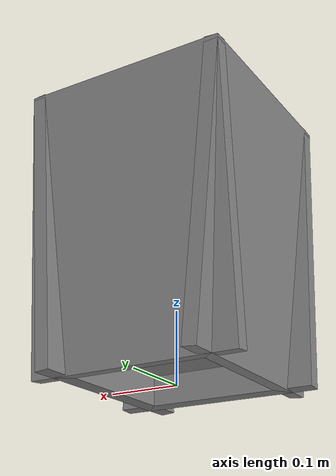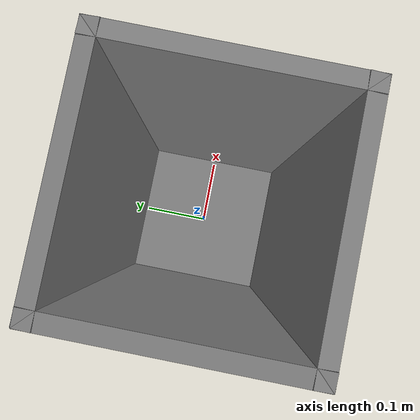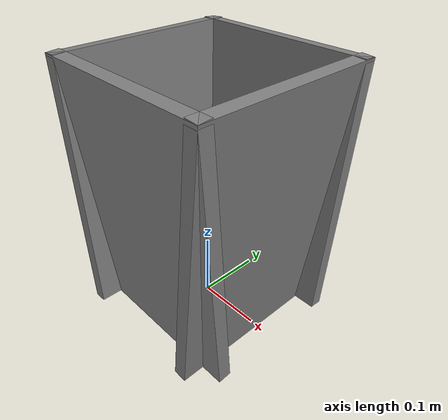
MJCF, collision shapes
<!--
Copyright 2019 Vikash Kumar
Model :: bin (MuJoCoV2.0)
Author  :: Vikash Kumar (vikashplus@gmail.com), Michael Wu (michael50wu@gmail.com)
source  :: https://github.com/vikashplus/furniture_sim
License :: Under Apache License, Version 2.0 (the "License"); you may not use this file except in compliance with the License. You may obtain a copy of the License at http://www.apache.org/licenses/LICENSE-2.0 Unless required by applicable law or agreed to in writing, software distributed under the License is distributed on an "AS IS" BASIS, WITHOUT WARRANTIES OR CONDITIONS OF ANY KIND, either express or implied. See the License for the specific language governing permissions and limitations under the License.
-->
<mujoco model="bin">

    <compiler angle="radian" meshdir="" texturedir=""/>
    <include file="../furniture_sim/bin/bin_asset.xml"/>

    <worldbody>
        <body>
            <include file="../furniture_sim/bin/bin_body.xml" />
        </body>
    </worldbody>

</mujoco>

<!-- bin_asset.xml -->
<mujocoinclude>
    <asset>
        <mesh name="bin" file="../furniture_sim/bin/meshes/bin.stl" scale="0.01 0.01 0.01" />
        <texture name="T_Metal_bin" type="cube" height="1" width="1" file="../furniture_sim/bin/textures/metal.png" />
        <material name="M_Metal_bin" texture="T_Metal_bin" texrepeat="3 3" reflectance="0.7" texuniform="false" />
    </asset>

    <default>
        <default class="viz_stl_Metal_bin" >
            <geom group="1" type="mesh" material="M_Metal_bin" />
        </default>
   </default>

</mujocoinclude>

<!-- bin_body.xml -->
<mujocoinclude>

    <geom class="viz_stl_Metal_bin" type="mesh" mesh="bin" euler="-1.57 0 3.14" group="1" contype="0" conaffinity="0" />
    <geom type='box' pos='-.12 0 .2' size='.01 .147 .2' euler='0 -0.0872665 0' group="3" />
    <geom type='box' pos='.12 0 .2' size='.01 .147 .2' euler='0 0.0872665 0' group="3" />
    <geom type='box' pos='0 -.12 .2' size='.01 .147 .2' euler='0.0872665 0 1.57' group="3" />
    <geom type='box' pos='0 .12 .2' size='.01 .147 .2' euler='-0.0872665 0 1.57' group="3"/>
    <geom type='box' pos='0 0 .05' size='.1 .1 .005' group="3" />

</mujocoinclude>
